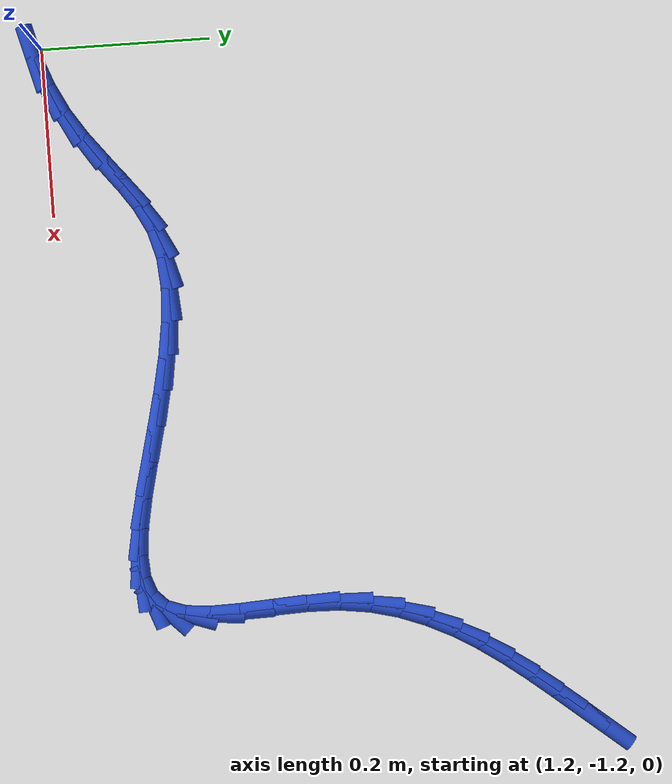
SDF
<sdf version="1.6">
 <world name="default">
  <model name="ground_plane">
   <static>1</static>
   <link name="link">
    <collision name="collision">
     <geometry><plane><normal>0 0 1</normal><size>100 100</size></plane></geometry>
     <surface><friction><ode><mu>100</mu><mu2>50</mu2></ode></friction></surface>
    </collision>
    <visual name="visual">
     <cast_shadows>0</cast_shadows>
     <geometry><plane><normal>0 0 1</normal><size>100 100</size></plane></geometry>
     <material>
      <script><uri>file://media/materials/scripts/gazebo.material</uri><name>Gazebo/WhiteGlow</name></script>
     </material>
    </visual>
   </link>
  </model>
  <model name="line">
   <link name="link_129">
    <pose>2.0460040259076613 -0.5899591622534351 0.01 0 1.57 0.8806789021742203</pose>
    <collision name="collision">
     <geometry><cylinder><radius>0.01</radius><length>0.08</length></cylinder></geometry>
    </collision>
    <visual name="visual">
     <material>
      <script><name>Gazebo/Blue</name><uri>file://media/materials/scripts/gazebo.material</uri></script>
     </material>
     <geometry><cylinder><radius>0.01</radius><length>0.08</length></cylinder></geometry>
    </visual>
   </link>
   <link name="link_130">
    <pose>2.0234860798531025 -0.617236002096588 0.01 0 1.57 0.8795892901332636</pose>
    <collision name="collision">
     <geometry><cylinder><radius>0.01</radius><length>0.08</length></cylinder></geometry>
    </collision>
    <visual name="visual">
     <material>
      <script><name>Gazebo/Blue</name><uri>file://media/materials/scripts/gazebo.material</uri></script>
     </material>
     <geometry><cylinder><radius>0.01</radius><length>0.08</length></cylinder></geometry>
    </visual>
   </link>
   <link name="link_131">
    <pose>2.0010090918380827 -0.6444028794533752 0.01 0 1.57 0.8942218095612864</pose>
    <collision name="collision">
     <geometry><cylinder><radius>0.01</radius><length>0.08</length></cylinder></geometry>
    </collision>
    <visual name="visual">
     <material>
      <script><name>Gazebo/Blue</name><uri>file://media/materials/scripts/gazebo.material</uri></script>
     </material>
     <geometry><cylinder><radius>0.01</radius><length>0.08</length></cylinder></geometry>
    </visual>
   </link>
   <link name="link_132">
    <pose>1.9790496318049233 -0.6717492630054396 0.01 0 1.57 0.9249101796681624</pose>
    <collision name="collision">
     <geometry><cylinder><radius>0.01</radius><length>0.08</length></cylinder></geometry>
    </collision>
    <visual name="visual">
     <material>
      <script><name>Gazebo/Blue</name><uri>file://media/materials/scripts/gazebo.material</uri></script>
     </material>
     <geometry><cylinder><radius>0.01</radius><length>0.08</length></cylinder></geometry>
    </visual>
   </link>
   <link name="link_133">
    <pose>1.9580842696959424 -0.6995646214344258 0.01 0 1.57 0.9720775089958414</pose>
    <collision name="collision">
     <geometry><cylinder><radius>0.01</radius><length>0.08</length></cylinder></geometry>
    </collision>
    <visual name="visual">
     <material>
      <script><name>Gazebo/Blue</name><uri>file://media/materials/scripts/gazebo.material</uri></script>
     </material>
     <geometry><cylinder><radius>0.01</radius><length>0.08</length></cylinder></geometry>
    </visual>
   </link>
   <link name="link_134">
    <pose>1.938589575453459 -0.7281384234219778 0.01 0 1.57 1.0359949752912105</pose>
    <collision name="collision">
     <geometry><cylinder><radius>0.01</radius><length>0.08</length></cylinder></geometry>
    </collision>
    <visual name="visual">
     <material>
      <script><name>Gazebo/Blue</name><uri>file://media/materials/scripts/gazebo.material</uri></script>
     </material>
     <geometry><cylinder><radius>0.01</radius><length>0.08</length></cylinder></geometry>
    </visual>
   </link>
   <link name="link_135">
    <pose>1.9210421190197922 -0.7577601376497408 0.01 0 1.57 1.1163875618004298</pose>
    <collision name="collision">
     <geometry><cylinder><radius>0.01</radius><length>0.08</length></cylinder></geometry>
    </collision>
    <visual name="visual">
     <material>
      <script><name>Gazebo/Blue</name><uri>file://media/materials/scripts/gazebo.material</uri></script>
     </material>
     <geometry><cylinder><radius>0.01</radius><length>0.08</length></cylinder></geometry>
    </visual>
   </link>
   <link name="link_136">
    <pose>1.905918470337262 -0.7887192327993575 0.01 0 1.57 1.2119303716720546</pose>
    <collision name="collision">
     <geometry><cylinder><radius>0.01</radius><length>0.08</length></cylinder></geometry>
    </collision>
    <visual name="visual">
     <material>
      <script><name>Gazebo/Blue</name><uri>file://media/materials/scripts/gazebo.material</uri></script>
     </material>
     <geometry><cylinder><radius>0.01</radius><length>0.08</length></cylinder></geometry>
    </visual>
   </link>
   <link name="link_137">
    <pose>1.8936951993481874 -0.8213051775524725 0.01 0 1.57 1.3198048110226115</pose>
    <collision name="collision">
     <geometry><cylinder><radius>0.01</radius><length>0.08</length></cylinder></geometry>
    </collision>
    <visual name="visual">
     <material>
      <script><name>Gazebo/Blue</name><uri>file://media/materials/scripts/gazebo.material</uri></script>
     </material>
     <geometry><cylinder><radius>0.01</radius><length>0.08</length></cylinder></geometry>
    </visual>
   </link>
   <link name="link_138">
    <pose>1.8848488759948872 -0.8558074405907301 0.01 0 1.57 1.4356119610011024</pose>
    <collision name="collision">
     <geometry><cylinder><radius>0.01</radius><length>0.08</length></cylinder></geometry>
    </collision>
    <visual name="visual">
     <material>
      <script><name>Gazebo/Blue</name><uri>file://media/materials/scripts/gazebo.material</uri></script>
     </material>
     <geometry><cylinder><radius>0.01</radius><length>0.08</length></cylinder></geometry>
    </visual>
   </link>
   <link name="link_139">
    <pose>1.8798560702196805 -0.8925154905957751 0.01 0 1.57 1.5467512293785866</pose>
    <collision name="collision">
     <geometry><cylinder><radius>0.01</radius><length>0.08</length></cylinder></geometry>
    </collision>
    <visual name="visual">
     <material>
      <script><name>Gazebo/Blue</name><uri>file://media/materials/scripts/gazebo.material</uri></script>
     </material>
     <geometry><cylinder><radius>0.01</radius><length>0.08</length></cylinder></geometry>
    </visual>
   </link>
   <link name="link_140">
    <pose>1.8789190747974334 -0.9314762325388494 0.01 0 1.57 -1.5286506248129772</pose>
    <collision name="collision">
     <geometry><cylinder><radius>0.01</radius><length>0.08</length></cylinder></geometry>
    </collision>
    <visual name="visual">
     <material>
      <script><name>Gazebo/Blue</name><uri>file://media/materials/scripts/gazebo.material</uri></script>
     </material>
     <geometry><cylinder><radius>0.01</radius><length>0.08</length></cylinder></geometry>
    </visual>
   </link>
   <link name="link_141">
    <pose>1.8805977989364082 -0.9712840893799719 0.01 0 1.57 -1.5128485257475095</pose>
    <collision name="collision">
     <geometry><cylinder><radius>0.01</radius><length>0.08</length></cylinder></geometry>
    </collision>
    <visual name="visual">
     <material>
      <script><name>Gazebo/Blue</name><uri>file://media/materials/scripts/gazebo.material</uri></script>
     </material>
     <geometry><cylinder><radius>0.01</radius><length>0.08</length></cylinder></geometry>
    </visual>
   </link>
   <link name="link_142">
    <pose>1.882843539409615 -1.0099952428108052 0.01 0 1.57 -1.5494072318282117</pose>
    <collision name="collision">
     <geometry><cylinder><radius>0.01</radius><length>0.08</length></cylinder></geometry>
    </collision>
    <visual name="visual">
     <material>
      <script><name>Gazebo/Blue</name><uri>file://media/materials/scripts/gazebo.material</uri></script>
     </material>
     <geometry><cylinder><radius>0.01</radius><length>0.08</length></cylinder></geometry>
    </visual>
   </link>
   <link name="link_143">
    <pose>1.883606599514815 -1.045664995918919 0.01 0 1.57 1.4807863838499806</pose>
    <collision name="collision">
     <geometry><cylinder><radius>0.01</radius><length>0.08</length></cylinder></geometry>
    </collision>
    <visual name="visual">
     <material>
      <script><name>Gazebo/Blue</name><uri>file://media/materials/scripts/gazebo.material</uri></script>
     </material>
     <geometry><cylinder><radius>0.01</radius><length>0.08</length></cylinder></geometry>
    </visual>
   </link>
   <link name="link_144">
    <pose>1.8808372825497732 -1.0763486517918825 0.01 0 1.57 1.2327028732730474</pose>
    <collision name="collision">
     <geometry><cylinder><radius>0.01</radius><length>0.08</length></cylinder></geometry>
    </collision>
    <visual name="visual">
     <material>
      <script><name>Gazebo/Blue</name><uri>file://media/materials/scripts/gazebo.material</uri></script>
     </material>
     <geometry><cylinder><radius>0.01</radius><length>0.08</length></cylinder></geometry>
    </visual>
   </link>
   <link name="link_145">
    <pose>1.8724859250581294 -1.1001015493993644 0.01 0 1.57 0.7872116238103157</pose>
    <collision name="collision">
     <geometry><cylinder><radius>0.01</radius><length>0.08</length></cylinder></geometry>
    </collision>
    <visual name="visual">
     <material>
      <script><name>Gazebo/Blue</name><uri>file://media/materials/scripts/gazebo.material</uri></script>
     </material>
     <geometry><cylinder><radius>0.01</radius><length>0.08</length></cylinder></geometry>
    </visual>
   </link>
   <link name="link_146">
    <pose>1.8570615279898655 -1.1155819912309763 0.01 0 1.57 0.3487041186660829</pose>
    <collision name="collision">
     <geometry><cylinder><radius>0.01</radius><length>0.08</length></cylinder></geometry>
    </collision>
    <visual name="visual">
     <material>
      <script><name>Gazebo/Blue</name><uri>file://media/materials/scripts/gazebo.material</uri></script>
     </material>
     <geometry><cylinder><radius>0.01</radius><length>0.08</length></cylinder></geometry>
    </visual>
   </link>
   <link name="link_147">
    <pose>1.835051781615376 -1.1235838686271062 0.01 0 1.57 0.06459439097500752</pose>
    <collision name="collision">
     <geometry><cylinder><radius>0.01</radius><length>0.08</length></cylinder></geometry>
    </collision>
    <visual name="visual">
     <material>
      <script><name>Gazebo/Blue</name><uri>file://media/materials/scripts/gazebo.material</uri></script>
     </material>
     <geometry><cylinder><radius>0.01</radius><length>0.08</length></cylinder></geometry>
    </visual>
   </link>
   <link name="link_148">
    <pose>1.8073822389290035 -1.1253736558353185 0.01 0 1.57 -0.09708456597115778</pose>
    <collision name="collision">
     <geometry><cylinder><radius>0.01</radius><length>0.08</length></cylinder></geometry>
    </collision>
    <visual name="visual">
     <material>
      <script><name>Gazebo/Blue</name><uri>file://media/materials/scripts/gazebo.material</uri></script>
     </material>
     <geometry><cylinder><radius>0.01</radius><length>0.08</length></cylinder></geometry>
    </visual>
   </link>
   <link name="link_149">
    <pose>1.7749784529250958 -1.1222178271031802 0.01 0 1.57 -0.18655163729863453</pose>
    <collision name="collision">
     <geometry><cylinder><radius>0.01</radius><length>0.08</length></cylinder></geometry>
    </collision>
    <visual name="visual">
     <material>
      <script><name>Gazebo/Blue</name><uri>file://media/materials/scripts/gazebo.material</uri></script>
     </material>
     <geometry><cylinder><radius>0.01</radius><length>0.08</length></cylinder></geometry>
    </visual>
   </link>
   <link name="link_150">
    <pose>1.7387659765979966 -1.1153828566782555 0.01 0 1.57 -0.23226992879262354</pose>
    <collision name="collision">
     <geometry><cylinder><radius>0.01</radius><length>0.08</length></cylinder></geometry>
    </collision>
    <visual name="visual">
     <material>
      <script><name>Gazebo/Blue</name><uri>file://media/materials/scripts/gazebo.material</uri></script>
     </material>
     <geometry><cylinder><radius>0.01</radius><length>0.08</length></cylinder></geometry>
    </visual>
   </link>
   <link name="link_151">
    <pose>1.6996703629420509 -1.1061352188081104 0.01 0 1.57 -0.24796895476317973</pose>
    <collision name="collision">
     <geometry><cylinder><radius>0.01</radius><length>0.08</length></cylinder></geometry>
    </collision>
    <visual name="visual">
     <material>
      <script><name>Gazebo/Blue</name><uri>file://media/materials/scripts/gazebo.material</uri></script>
     </material>
     <geometry><cylinder><radius>0.01</radius><length>0.08</length></cylinder></geometry>
    </visual>
   </link>
   <link name="link_152">
    <pose>1.6586171649516033 -1.0957413877403113 0.01 0 1.57 -0.2394302934770262</pose>
    <collision name="collision">
     <geometry><cylinder><radius>0.01</radius><length>0.08</length></cylinder></geometry>
    </collision>
    <visual name="visual">
     <material>
      <script><name>Gazebo/Blue</name><uri>file://media/materials/scripts/gazebo.material</uri></script>
     </material>
     <geometry><cylinder><radius>0.01</radius><length>0.08</length></cylinder></geometry>
    </visual>
   </link>
   <link name="link_153">
    <pose>1.6165319356210006 -1.085467837722423 0.01 0 1.57 -0.20759449447325337</pose>
    <collision name="collision">
     <geometry><cylinder><radius>0.01</radius><length>0.08</length></cylinder></geometry>
    </collision>
    <visual name="visual">
     <material>
      <script><name>Gazebo/Blue</name><uri>file://media/materials/scripts/gazebo.material</uri></script>
     </material>
     <geometry><cylinder><radius>0.01</radius><length>0.08</length></cylinder></geometry>
    </visual>
   </link>
   <link name="link_154">
    <pose>1.5743402279445873 -1.0765810430020115 0.01 0 1.57 -0.1495439713049139</pose>
    <collision name="collision">
     <geometry><cylinder><radius>0.01</radius><length>0.08</length></cylinder></geometry>
    </collision>
    <visual name="visual">
     <material>
      <script><name>Gazebo/Blue</name><uri>file://media/materials/scripts/gazebo.material</uri></script>
     </material>
     <geometry><cylinder><radius>0.01</radius><length>0.08</length></cylinder></geometry>
    </visual>
   </link>
   <link name="link_155">
    <pose>1.5329675949167083 -1.0703474778266426 0.01 0 1.57 -0.05832332832943337</pose>
    <collision name="collision">
     <geometry><cylinder><radius>0.01</radius><length>0.08</length></cylinder></geometry>
    </collision>
    <visual name="visual">
     <material>
      <script><name>Gazebo/Blue</name><uri>file://media/materials/scripts/gazebo.material</uri></script>
     </material>
     <geometry><cylinder><radius>0.01</radius><length>0.08</length></cylinder></geometry>
    </visual>
   </link>
   <link name="link_156">
    <pose>1.4933395895317072 -1.0680336164438813 0.01 0 1.57 0.07756285486460805</pose>
    <collision name="collision">
     <geometry><cylinder><radius>0.01</radius><length>0.08</length></cylinder></geometry>
    </collision>
    <visual name="visual">
     <material>
      <script><name>Gazebo/Blue</name><uri>file://media/materials/scripts/gazebo.material</uri></script>
     </material>
     <geometry><cylinder><radius>0.01</radius><length>0.08</length></cylinder></geometry>
    </visual>
   </link>
   <link name="link_157">
    <pose>1.4563817647839319 -1.0709059331012938 0.01 0 1.57 0.270708585392257</pose>
    <collision name="collision">
     <geometry><cylinder><radius>0.01</radius><length>0.08</length></cylinder></geometry>
    </collision>
    <visual name="visual">
     <material>
      <script><name>Gazebo/Blue</name><uri>file://media/materials/scripts/gazebo.material</uri></script>
     </material>
     <geometry><cylinder><radius>0.01</radius><length>0.08</length></cylinder></geometry>
    </visual>
   </link>
   <link name="link_158">
    <pose>1.422980334650723 -1.0801755362422112 0.01 0 1.57 0.47338343491099566</pose>
    <collision name="collision">
     <geometry><cylinder><radius>0.01</radius><length>0.08</length></cylinder></geometry>
    </collision>
    <visual name="visual">
     <material>
      <script><name>Gazebo/Blue</name><uri>file://media/materials/scripts/gazebo.material</uri></script>
     </material>
     <geometry><cylinder><radius>0.01</radius><length>0.08</length></cylinder></geometry>
    </visual>
   </link>
   <link name="link_159">
    <pose>1.3929565016655419 -1.0955546352626264 0.01 0 1.57 0.6100912863302016</pose>
    <collision name="collision">
     <geometry><cylinder><radius>0.01</radius><length>0.08</length></cylinder></geometry>
    </collision>
    <visual name="visual">
     <material>
      <script><name>Gazebo/Blue</name><uri>file://media/materials/scripts/gazebo.material</uri></script>
     </material>
     <geometry><cylinder><radius>0.01</radius><length>0.08</length></cylinder></geometry>
    </visual>
   </link>
   <link name="link_160">
    <pose>1.3649690245729265 -1.1151194140511889 0.01 0 1.57 0.6716747212453289</pose>
    <collision name="collision">
     <geometry><cylinder><radius>0.01</radius><length>0.08</length></cylinder></geometry>
    </collision>
    <visual name="visual">
     <material>
      <script><name>Gazebo/Blue</name><uri>file://media/materials/scripts/gazebo.material</uri></script>
     </material>
     <geometry><cylinder><radius>0.01</radius><length>0.08</length></cylinder></geometry>
    </visual>
   </link>
   <link name="link_161">
    <pose>1.337617789808677 -1.1368631995019187 0.01 0 1.57 0.6621240649058909</pose>
    <collision name="collision">
     <geometry><cylinder><radius>0.01</radius><length>0.08</length></cylinder></geometry>
    </collision>
    <visual name="visual">
     <material>
      <script><name>Gazebo/Blue</name><uri>file://media/materials/scripts/gazebo.material</uri></script>
     </material>
     <geometry><cylinder><radius>0.01</radius><length>0.08</length></cylinder></geometry>
    </visual>
   </link>
   <link name="link_162">
    <pose>1.3095026838085906 -1.1587793185088369 0.01 0 1.57 0.5857430705709162</pose>
    <collision name="collision">
     <geometry><cylinder><radius>0.01</radius><length>0.08</length></cylinder></geometry>
    </collision>
    <visual name="visual">
     <material>
      <script><name>Gazebo/Blue</name><uri>file://media/materials/scripts/gazebo.material</uri></script>
     </material>
     <geometry><cylinder><radius>0.01</radius><length>0.08</length></cylinder></geometry>
    </visual>
   </link>
   <link name="link_163">
    <pose>1.2792272396946747 -1.1788642842908343 0.01 0 1.57 0.46859729016755386</pose>
    <collision name="collision">
     <geometry><cylinder><radius>0.01</radius><length>0.08</length></cylinder></geometry>
    </collision>
    <visual name="visual">
     <material>
      <script><name>Gazebo/Blue</name><uri>file://media/materials/scripts/gazebo.material</uri></script>
     </material>
     <geometry><cylinder><radius>0.01</radius><length>0.08</length></cylinder></geometry>
    </visual>
   </link>
   <link name="link_164">
    <pose>1.2460295324824364 -1.1956690467528026 0.01 0 1.57 0.35715297959245684</pose>
    <collision name="collision">
     <geometry><cylinder><radius>0.01</radius><length>0.08</length></cylinder></geometry>
    </collision>
    <visual name="visual">
     <material>
      <script><name>Gazebo/Blue</name><uri>file://media/materials/scripts/gazebo.material</uri></script>
     </material>
     <geometry><cylinder><radius>0.01</radius><length>0.08</length></cylinder></geometry>
    </visual>
   </link>
   <link name="link_165">
    <pose>1.2105007280578695 -1.2089268311163253 0.01 0 1.57 0.2531341583204191</pose>
    <collision name="collision">
     <geometry><cylinder><radius>0.01</radius><length>0.08</length></cylinder></geometry>
    </collision>
    <visual name="visual">
     <material>
      <script><name>Gazebo/Blue</name><uri>file://media/materials/scripts/gazebo.material</uri></script>
     </material>
     <geometry><cylinder><radius>0.01</radius><length>0.08</length></cylinder></geometry>
    </visual>
   </link>
  </model>
 </world>
</sdf>
